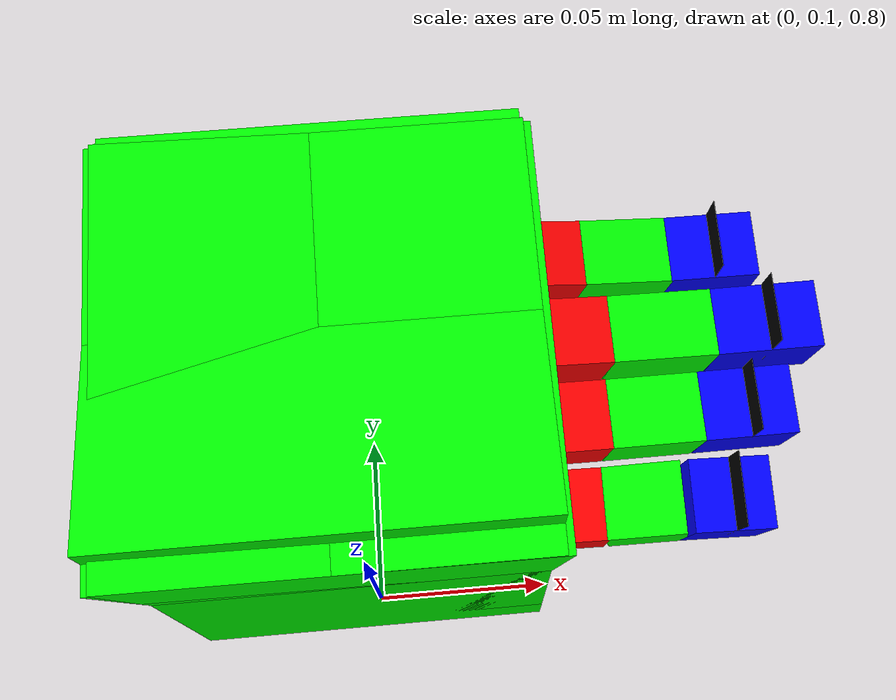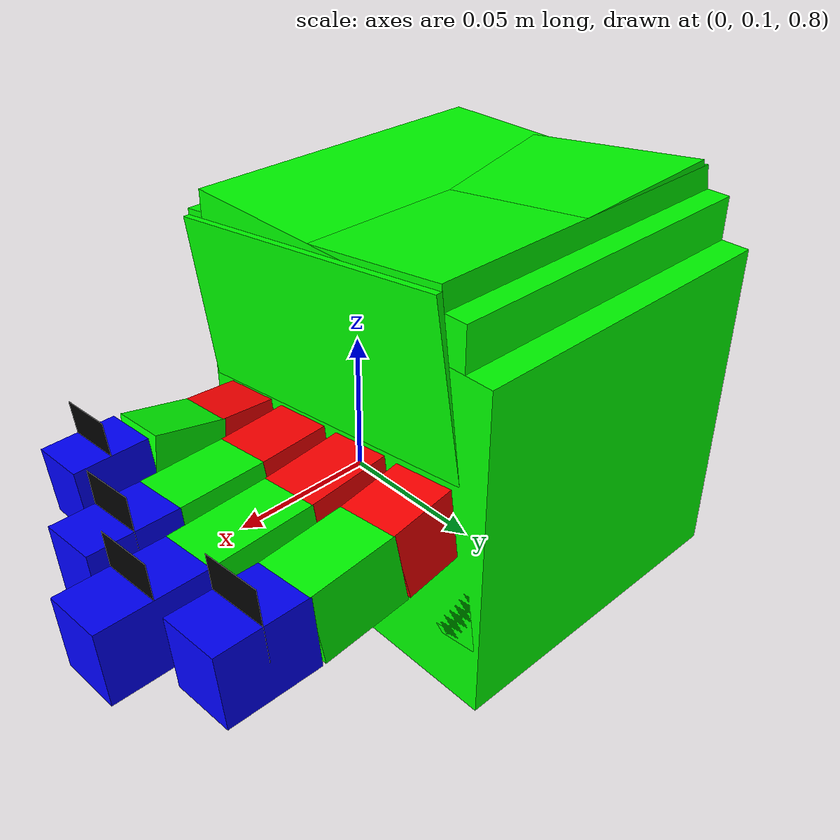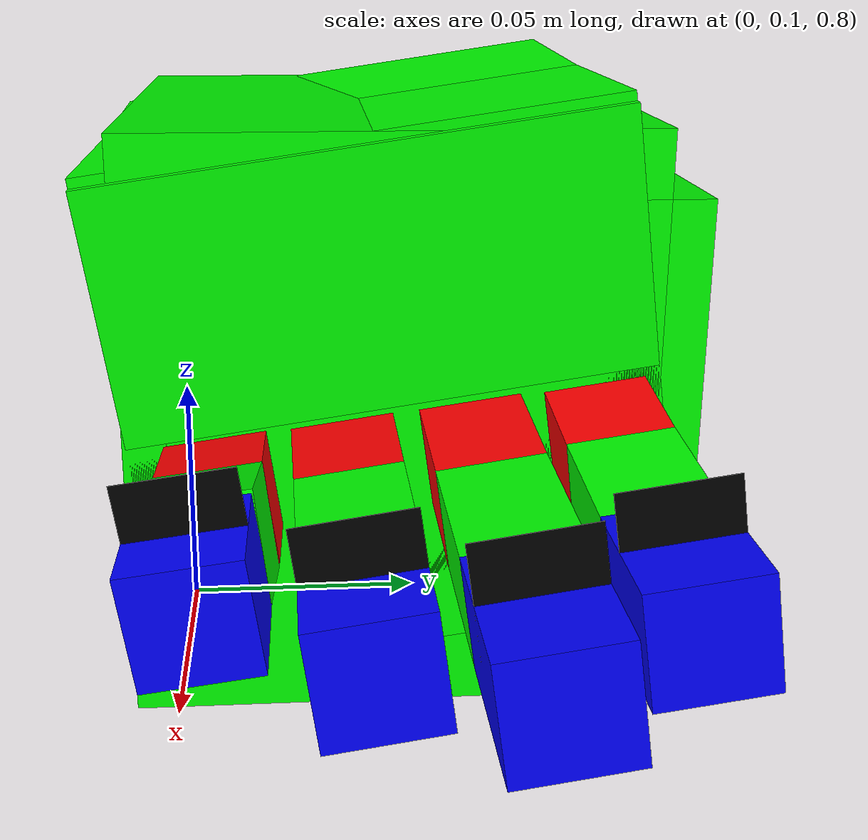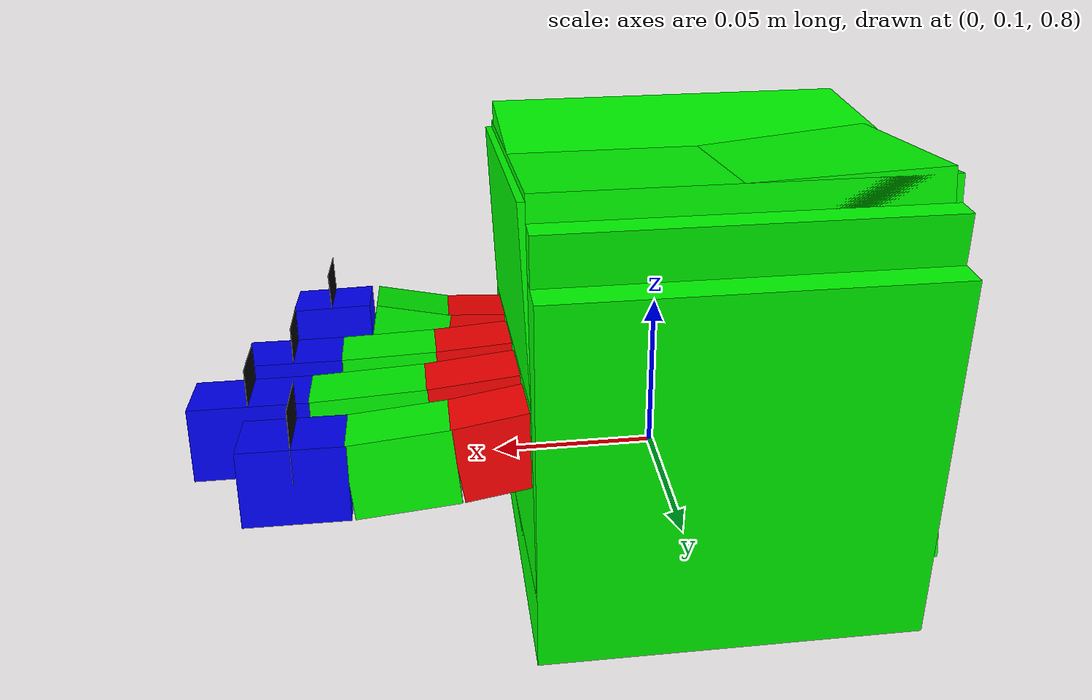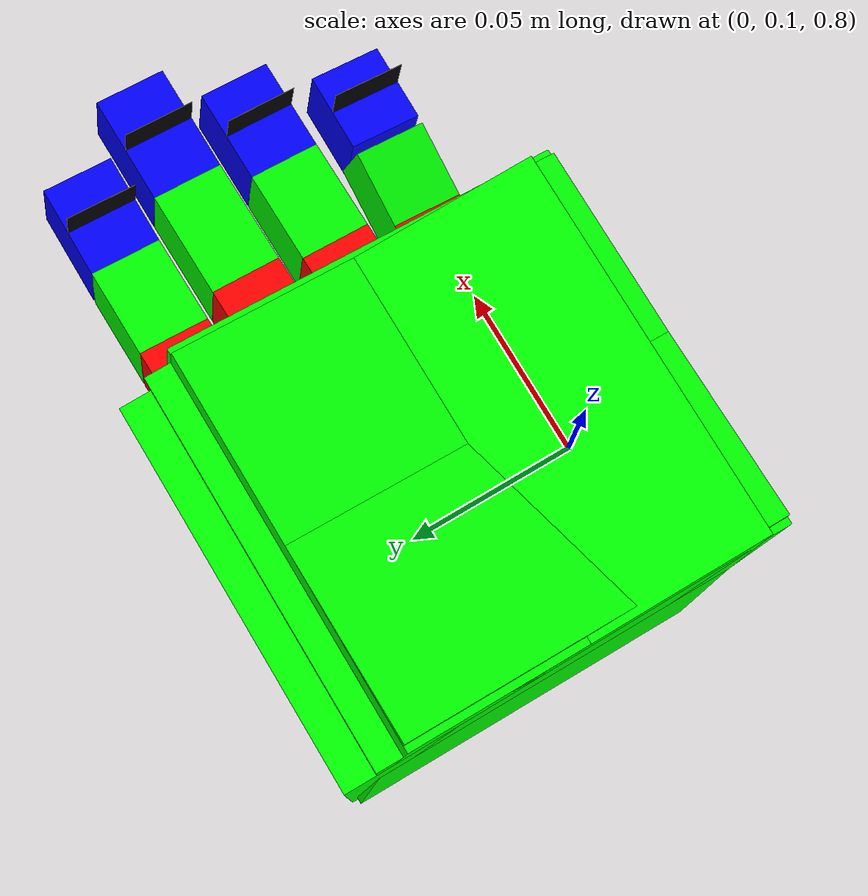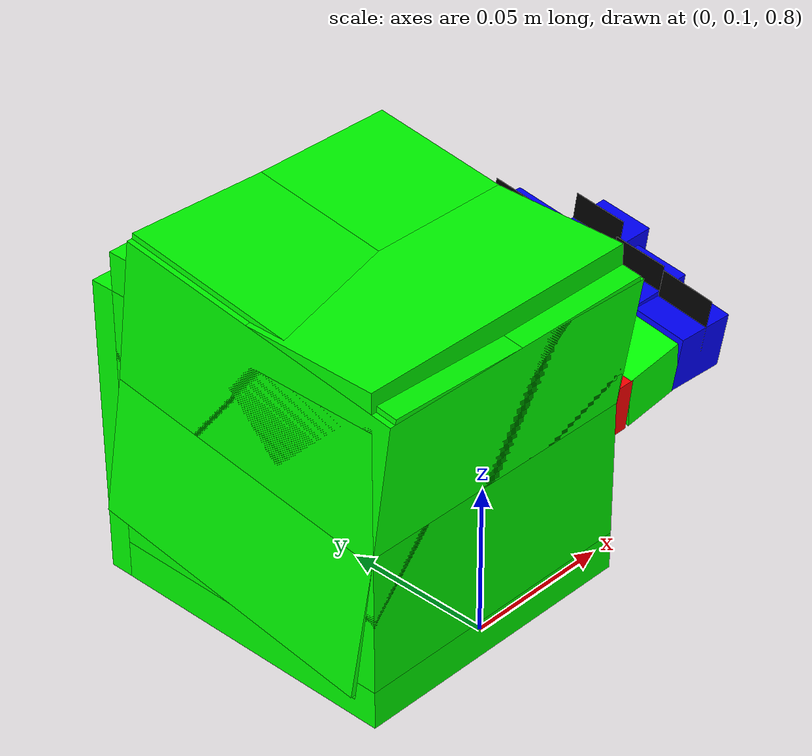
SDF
<sdf version="1.9">
 <world name="Rings">
  <model name="ground_plane">
   <static>true</static>
   <link name="link">
    <collision name="collision">
     <geometry><plane><normal>0 0 1</normal><size>100 100</size></plane></geometry>
    </collision>
    <visual name="visual">
     <geometry><plane><normal>0 0 1</normal><size>100 100</size></plane></geometry>
     <material>
      <ambient>0.8 0.8 0.8 1</ambient>
      <diffuse>0.8 0.8 0.8 1</diffuse>
      <specular>0.8 0.8 0.8 1</specular>
     </material>
    </visual>
    <inertial>
     <mass>1</mass>
     <inertia><ixx>1</ixx><ixy>0</ixy><ixz>0</ixz><iyy>1</iyy><iyz>0</iyz><izz>1</izz></inertia>
    </inertial>
   </link>
  </model>
  <model name="left_hand">
   <joint name="palm_x" type="prismatic">
    <parent>world</parent>
    <child>world_2</child>
    <axis>
     <xyz>1 0 0</xyz>
     <limit>
      <lower>-10</lower>
      <upper>10</upper>
      <effort>30</effort>
      <velocity>1</velocity>
      <stiffness>100000000</stiffness>
      <dissipation>1</dissipation>
     </limit>
     <dynamics>
      <spring_reference>0</spring_reference>
      <spring_stiffness>0</spring_stiffness>
      <damping>0</damping>
      <friction>0</friction>
     </dynamics>
    </axis>
   </joint>
   <link name="world_2">
    <inertial>
     <mass>1.0000000000000001e-05</mass>
     <inertia>
      <ixx>3.3333300000000001e-07</ixx>
      <ixy>0</ixy>
      <ixz>0</ixz>
      <iyy>5.2416699999999997e-06</iyy>
      <iyz>0</iyz>
      <izz>5.5083299999999998e-06</izz>
     </inertia>
    </inertial>
    <visual name="world_2_visual">
     <geometry><box><size>0.1 0.1 0.1</size></box></geometry>
     <material><diffuse>0 1 0 0</diffuse><ambient>0 1 0 0</ambient></material>
    </visual>
   </link>
   <joint name="palm_y" type="prismatic">
    <parent>world_2</parent>
    <child>world_3</child>
    <axis>
     <xyz>0 1 0</xyz>
     <limit>
      <lower>-10</lower>
      <upper>10</upper>
      <effort>30</effort>
      <velocity>1</velocity>
      <stiffness>100000000</stiffness>
      <dissipation>1</dissipation>
     </limit>
     <dynamics>
      <spring_reference>0</spring_reference>
      <spring_stiffness>0</spring_stiffness>
      <damping>0</damping>
      <friction>0</friction>
     </dynamics>
    </axis>
   </joint>
   <link name="world_3">
    <pose>0 -0.008199 0 0 -0 0</pose>
    <inertial>
     <mass>1.0000000000000001e-05</mass>
     <inertia>
      <ixx>3.3333300000000001e-07</ixx>
      <ixy>0</ixy>
      <ixz>0</ixz>
      <iyy>5.2416699999999997e-06</iyy>
      <iyz>0</iyz>
      <izz>5.5083299999999998e-06</izz>
     </inertia>
    </inertial>
    <visual name="world_3_visual">
     <geometry><box><size>0.1 0.1 0.1</size></box></geometry>
     <material><diffuse>0 1 0 0</diffuse><ambient>0 1 0 0</ambient></material>
    </visual>
   </link>
   <joint name="palm_z" type="prismatic">
    <parent>world_3</parent>
    <child>world_4</child>
    <axis>
     <xyz>0 0 1</xyz>
     <limit>
      <lower>-10</lower>
      <upper>10</upper>
      <effort>30</effort>
      <velocity>1</velocity>
      <stiffness>100000000</stiffness>
      <dissipation>1</dissipation>
     </limit>
     <dynamics>
      <spring_reference>0</spring_reference>
      <spring_stiffness>0</spring_stiffness>
      <damping>0</damping>
      <friction>0</friction>
     </dynamics>
    </axis>
   </joint>
   <link name="world_4">
    <pose>0 -0.008199 0.012687 0 -0 0</pose>
    <inertial>
     <mass>1.0000000000000001e-05</mass>
     <inertia>
      <ixx>3.3333300000000001e-07</ixx>
      <ixy>0</ixy>
      <ixz>0</ixz>
      <iyy>5.2416699999999997e-06</iyy>
      <iyz>0</iyz>
      <izz>5.5083299999999998e-06</izz>
     </inertia>
    </inertial>
    <visual name="world_4_visual">
     <geometry><box><size>0.1 0.1 0.1</size></box></geometry>
     <material><diffuse>0 1 0 0</diffuse><ambient>0 1 0 0</ambient></material>
    </visual>
   </link>
   <joint name="palm_roll" type="revolute">
    <parent>world_4</parent>
    <child>world_5</child>
    <axis>
     <xyz>1 0 0</xyz>
     <limit>
      <lower>-10000000000000000</lower>
      <upper>10000000000000000</upper>
      <effort>inf</effort>
      <velocity>inf</velocity>
      <stiffness>100000000</stiffness>
      <dissipation>1</dissipation>
     </limit>
     <dynamics>
      <spring_reference>0</spring_reference>
      <spring_stiffness>0</spring_stiffness>
      <damping>0</damping>
      <friction>0</friction>
     </dynamics>
    </axis>
   </joint>
   <link name="world_5">
    <pose>0 -0.008199 0.012687 0.144272 -0 0</pose>
    <inertial>
     <mass>1.0000000000000001e-05</mass>
     <inertia>
      <ixx>3.3333300000000001e-07</ixx>
      <ixy>0</ixy>
      <ixz>0</ixz>
      <iyy>5.2416699999999997e-06</iyy>
      <iyz>0</iyz>
      <izz>5.5083299999999998e-06</izz>
     </inertia>
    </inertial>
    <visual name="world_5_visual">
     <geometry><box><size>0.1 0.1 0.1</size></box></geometry>
     <material><diffuse>0 1 0 0</diffuse><ambient>0 1 0 0</ambient></material>
    </visual>
   </link>
   <joint name="palm_pitch" type="revolute">
    <parent>world_5</parent>
    <child>world_6</child>
    <axis>
     <xyz>0 1 0</xyz>
     <limit>
      <lower>-10000000000000000</lower>
      <upper>10000000000000000</upper>
      <effort>inf</effort>
      <velocity>inf</velocity>
      <stiffness>100000000</stiffness>
      <dissipation>1</dissipation>
     </limit>
     <dynamics>
      <spring_reference>0</spring_reference>
      <spring_stiffness>0</spring_stiffness>
      <damping>0</damping>
      <friction>0</friction>
     </dynamics>
    </axis>
   </joint>
   <link name="world_6">
    <pose>0 -0.008199 0.012687 0.144372 0.037022 0.005381</pose>
    <inertial>
     <mass>1.0000000000000001e-05</mass>
     <inertia>
      <ixx>3.3333300000000001e-07</ixx>
      <ixy>0</ixy>
      <ixz>0</ixz>
      <iyy>5.2416699999999997e-06</iyy>
      <iyz>0</iyz>
      <izz>5.5083299999999998e-06</izz>
     </inertia>
    </inertial>
    <visual name="world_6_visual">
     <geometry><box><size>0.1 0.1 0.1</size></box></geometry>
     <material><diffuse>0 1 0 0</diffuse><ambient>0 1 0 0</ambient></material>
    </visual>
   </link>
   <joint name="palm_yaw" type="revolute">
    <parent>world_6</parent>
    <child>palm</child>
    <axis>
     <xyz>0 0 1</xyz>
     <limit>
      <lower>-10000000000000000</lower>
      <upper>10000000000000000</upper>
      <effort>inf</effort>
      <velocity>inf</velocity>
      <stiffness>100000000</stiffness>
      <dissipation>1</dissipation>
     </limit>
     <dynamics>
      <spring_reference>0</spring_reference>
      <spring_stiffness>0</spring_stiffness>
      <damping>0</damping>
      <friction>0</friction>
     </dynamics>
    </axis>
   </joint>
   <link name="palm">
    <pose>0 -0.008199 0.012687 0.145972 0.030049 0.053096</pose>
    <inertial>
     <mass>1</mass>
     <inertia>
      <ixx>0.033333300000000003</ixx>
      <ixy>0</ixy>
      <ixz>0</ixz>
      <iyy>0.52416700000000005</iyy>
      <iyz>0</iyz>
      <izz>0.55083300000000002</izz>
     </inertia>
    </inertial>
    <collision name="palm_collision">
     <pose>0 0 -0.0127 0 0 0</pose>
     <geometry><box><size>0.0889 0.0889 0.0254</size></box></geometry>
    </collision>
    <visual name="palm_visual">
     <pose>0 0 -0.0127 0 0 0</pose>
     <geometry><box><size>0.0889 0.0889 0.0254</size></box></geometry>
     <material><diffuse>0 1 0 1</diffuse><ambient>0 1 0 1</ambient></material>
    </visual>
   </link>
   <joint name="palm_index_dumb" type="revolute">
    <parent>palm</parent>
    <child>index_dumb</child>
    <axis>
     <xyz>0 0 1</xyz>
     <limit>
      <lower>-10000000000000000</lower>
      <upper>10000000000000000</upper>
      <effort>inf</effort>
      <velocity>inf</velocity>
      <stiffness>100000000</stiffness>
      <dissipation>1</dissipation>
     </limit>
     <dynamics>
      <spring_reference>0</spring_reference>
      <spring_stiffness>0</spring_stiffness>
      <damping>0</damping>
      <friction>0</friction>
     </dynamics>
    </axis>
   </joint>
   <link name="index_dumb">
    <pose>0.042299 0.030668 0.007102 0.144257 0.03747 0.002299</pose>
    <inertial>
     <mass>0.10000000000000001</mass>
     <inertia>
      <ixx>0.0033333299999999998</ixx>
      <ixy>0</ixy>
      <ixz>0</ixz>
      <iyy>0.052416699999999997</iyy>
      <iyz>0</iyz>
      <izz>0.055083300000000002</izz>
     </inertia>
    </inertial>
    <visual name="index_dumb_visual">
     <pose>5e-05 0 0 0 0 0</pose>
     <geometry><box><size>0.0001 0.01905 0.01905</size></box></geometry>
     <material><diffuse>0 0 0 0</diffuse><ambient>0 0 0 0</ambient></material>
    </visual>
   </link>
   <joint name="index_dumb_index_1" type="revolute">
    <parent>index_dumb</parent>
    <child>index_1</child>
    <axis>
     <xyz>0 -1 0</xyz>
     <limit>
      <lower>-10000000000000000</lower>
      <upper>10000000000000000</upper>
      <effort>inf</effort>
      <velocity>inf</velocity>
      <stiffness>100000000</stiffness>
      <dissipation>1</dissipation>
     </limit>
     <dynamics>
      <spring_reference>0</spring_reference>
      <spring_stiffness>0</spring_stiffness>
      <damping>0</damping>
      <friction>0</friction>
     </dynamics>
    </axis>
   </joint>
   <link name="index_1">
    <pose>0.042299 0.030668 0.007102 0.146001 0.15865 0.020084</pose>
    <inertial>
     <mass>0.10000000000000001</mass>
     <inertia>
      <ixx>0.0033333299999999998</ixx>
      <ixy>0</ixy>
      <ixz>0</ixz>
      <iyy>0.052416699999999997</iyy>
      <iyz>0</iyz>
      <izz>0.055083300000000002</izz>
     </inertia>
    </inertial>
    <collision name="index_1_collision_collision">
     <pose>0.0127 0 0 0 0 0</pose>
     <geometry><box><size>0.0254 0.01905 0.01905</size></box></geometry>
    </collision>
    <visual name="index_1_visual">
     <pose>0.0127 0 0 0 0 0</pose>
     <geometry><box><size>0.0254 0.01905 0.01905</size></box></geometry>
     <material><diffuse>1 0 0 1</diffuse><ambient>1 0 0 1</ambient></material>
    </visual>
   </link>
   <joint name="index_1_index_2" type="revolute">
    <parent>index_1</parent>
    <child>index_2</child>
    <axis>
     <xyz>0 -1 0</xyz>
     <limit>
      <lower>-10000000000000000</lower>
      <upper>10000000000000000</upper>
      <effort>inf</effort>
      <velocity>inf</velocity>
      <stiffness>100000000</stiffness>
      <dissipation>1</dissipation>
     </limit>
     <dynamics>
      <spring_reference>0</spring_reference>
      <spring_stiffness>0</spring_stiffness>
      <damping>0</damping>
      <friction>0</friction>
     </dynamics>
    </axis>
   </joint>
   <link name="index_2">
    <pose>0.067375 0.031172 0.003089 0.144752 0.090577 0.010042</pose>
    <inertial>
     <mass>0.10000000000000001</mass>
     <inertia>
      <ixx>0.0033333299999999998</ixx>
      <ixy>0</ixy>
      <ixz>0</ixz>
      <iyy>0.052416699999999997</iyy>
      <iyz>0</iyz>
      <izz>0.055083300000000002</izz>
     </inertia>
    </inertial>
    <collision name="index_2_collision_collision">
     <pose>0.0127 0 0 0 0 0</pose>
     <geometry><box><size>0.0254 0.01905 0.01905</size></box></geometry>
    </collision>
    <visual name="index_2_visual">
     <pose>0.0127 0 0 0 0 0</pose>
     <geometry><box><size>0.0254 0.01905 0.01905</size></box></geometry>
     <material><diffuse>0 1 0 1</diffuse><ambient>0 1 0 1</ambient></material>
    </visual>
   </link>
   <joint name="index_2_index_3" type="revolute">
    <parent>index_2</parent>
    <child>index_3</child>
    <axis>
     <xyz>0 -1 0</xyz>
     <limit>
      <lower>-10000000000000000</lower>
      <upper>10000000000000000</upper>
      <effort>inf</effort>
      <velocity>inf</velocity>
      <stiffness>100000000</stiffness>
      <dissipation>1</dissipation>
     </limit>
     <dynamics>
      <spring_reference>0</spring_reference>
      <spring_stiffness>0</spring_stiffness>
      <damping>0</damping>
      <friction>0</friction>
     </dynamics>
    </axis>
   </joint>
   <link name="index_3">
    <pose>0.09267 0.031426 0.000792 0.144155 -0.000432 -0.003206</pose>
    <inertial>
     <mass>0.10000000000000001</mass>
     <inertia>
      <ixx>0.0033333299999999998</ixx>
      <ixy>0</ixy>
      <ixz>0</ixz>
      <iyy>0.052416699999999997</iyy>
      <iyz>0</iyz>
      <izz>0.055083300000000002</izz>
     </inertia>
    </inertial>
    <collision name="index_3_collision_collision">
     <pose>0.0127 0 0 0 0 0</pose>
     <geometry><box><size>0.0254 0.01905 0.01905</size></box></geometry>
    </collision>
    <visual name="index_3_visual">
     <pose>0.0127 0 0 0 0 0</pose>
     <geometry><box><size>0.0254 0.01905 0.01905</size></box></geometry>
     <material><diffuse>0 0 1 1</diffuse><ambient>0 0 1 1</ambient></material>
    </visual>
   </link>
   <joint name="index_3_index_tip" type="fixed">
    <parent>index_3</parent>
    <child>index_tip</child>
    <axis>
     <xyz>0 0 1</xyz>
     <limit>
      <lower>-10000000000000000</lower>
      <upper>10000000000000000</upper>
      <effort>inf</effort>
      <velocity>inf</velocity>
      <stiffness>100000000</stiffness>
      <dissipation>1</dissipation>
     </limit>
     <dynamics>
      <spring_reference>0</spring_reference>
      <spring_stiffness>0</spring_stiffness>
      <damping>0</damping>
      <friction>0</friction>
     </dynamics>
    </axis>
    <physics>
     <provide_feedback>true</provide_feedback>
     <ode><limit><cfm>0</cfm><erp>0.20000000000000001</erp></limit><provide_feedback>true</provide_feedback></ode>
    </physics>
    <sensor name="force_torque_sensor" type="force_torque">
     <topic>force_torque</topic>
     <update_rate>100</update_rate>
     <enable_metrics>false</enable_metrics>
     <force_torque>
      <frame>sensor</frame>
      <measure_direction>parent_to_child</measure_direction>
      <force>
       <x>
        <noise type="none">
         <mean>0</mean>
         <stddev>0</stddev>
         <bias_mean>0</bias_mean>
         <bias_stddev>0</bias_stddev>
         <dynamic_bias_stddev>0</dynamic_bias_stddev>
         <dynamic_bias_correlation_time>0</dynamic_bias_correlation_time>
         <precision>0</precision>
        </noise>
       </x>
       <y>
        <noise type="none">
         <mean>0</mean>
         <stddev>0</stddev>
         <bias_mean>0</bias_mean>
         <bias_stddev>0</bias_stddev>
         <dynamic_bias_stddev>0</dynamic_bias_stddev>
         <dynamic_bias_correlation_time>0</dynamic_bias_correlation_time>
         <precision>0</precision>
        </noise>
       </y>
       <z>
        <noise type="none">
         <mean>0</mean>
         <stddev>0</stddev>
         <bias_mean>0</bias_mean>
         <bias_stddev>0</bias_stddev>
         <dynamic_bias_stddev>0</dynamic_bias_stddev>
         <dynamic_bias_correlation_time>0</dynamic_bias_correlation_time>
         <precision>0</precision>
        </noise>
       </z>
      </force>
      <torque>
       <x>
        <noise type="none">
         <mean>0</mean>
         <stddev>0</stddev>
         <bias_mean>0</bias_mean>
         <bias_stddev>0</bias_stddev>
         <dynamic_bias_stddev>0</dynamic_bias_stddev>
         <dynamic_bias_correlation_time>0</dynamic_bias_correlation_time>
         <precision>0</precision>
        </noise>
       </x>
       <y>
        <noise type="none">
         <mean>0</mean>
         <stddev>0</stddev>
         <bias_mean>0</bias_mean>
         <bias_stddev>0</bias_stddev>
         <dynamic_bias_stddev>0</dynamic_bias_stddev>
         <dynamic_bias_correlation_time>0</dynamic_bias_correlation_time>
         <precision>0</precision>
        </noise>
       </y>
       <z>
        <noise type="none">
         <mean>0</mean>
         <stddev>0</stddev>
         <bias_mean>0</bias_mean>
         <bias_stddev>0</bias_stddev>
         <dynamic_bias_stddev>0</dynamic_bias_stddev>
         <dynamic_bias_correlation_time>0</dynamic_bias_correlation_time>
         <precision>0</precision>
        </noise>
       </z>
      </torque>
     </force_torque>
    </sensor>
   </joint>
   <link name="index_tip">
    <pose>0.105361 0.030017 0.010224 0.144155 -0.000432 -0.003206</pose>
    <inertial>
     <mass>0.10000000000000001</mass>
     <inertia>
      <ixx>0.0033333299999999998</ixx>
      <ixy>0</ixy>
      <ixz>0</ixz>
      <iyy>0.052416699999999997</iyy>
      <iyz>0</iyz>
      <izz>0.055083300000000002</izz>
     </inertia>
    </inertial>
    <visual name="index_tip_visual">
     <pose>5e-05 0 0 0 0 0</pose>
     <geometry><box><size>0.0001 0.01905 0.01905</size></box></geometry>
     <material><diffuse>0 0 0 0</diffuse><ambient>0 0 0 0</ambient></material>
    </visual>
   </link>
   <joint name="palm_middle_dumb" type="revolute">
    <parent>palm</parent>
    <child>middle_dumb</child>
    <axis>
     <xyz>0 0 1</xyz>
     <limit>
      <lower>-10000000000000000</lower>
      <upper>10000000000000000</upper>
      <effort>inf</effort>
      <velocity>inf</velocity>
      <stiffness>100000000</stiffness>
      <dissipation>1</dissipation>
     </limit>
     <dynamics>
      <spring_reference>0</spring_reference>
      <spring_stiffness>0</spring_stiffness>
      <damping>0</damping>
      <friction>0</friction>
     </dynamics>
    </axis>
   </joint>
   <link name="middle_dumb">
    <pose>0.043433 0.007387 0.003677 0.144565 0.036253 0.010669</pose>
    <inertial>
     <mass>0.10000000000000001</mass>
     <inertia>
      <ixx>0.0033333299999999998</ixx>
      <ixy>0</ixy>
      <ixz>0</ixz>
      <iyy>0.052416699999999997</iyy>
      <iyz>0</iyz>
      <izz>0.055083300000000002</izz>
     </inertia>
    </inertial>
    <visual name="middle_dumb_visual">
     <pose>5e-05 0 0 0 0 0</pose>
     <geometry><box><size>0.0001 0.01905 0.01905</size></box></geometry>
     <material><diffuse>0 0 0 0</diffuse><ambient>0 0 0 0</ambient></material>
    </visual>
   </link>
   <joint name="middle_dumb_middle_1" type="revolute">
    <parent>middle_dumb</parent>
    <child>middle_1</child>
    <axis>
     <xyz>0 -1 0</xyz>
     <limit>
      <lower>-10000000000000000</lower>
      <upper>10000000000000000</upper>
      <effort>inf</effort>
      <velocity>inf</velocity>
      <stiffness>100000000</stiffness>
      <dissipation>1</dissipation>
     </limit>
     <dynamics>
      <spring_reference>0</spring_reference>
      <spring_stiffness>0</spring_stiffness>
      <damping>0</damping>
      <friction>0</friction>
     </dynamics>
    </axis>
   </joint>
   <link name="middle_1">
    <pose>0.043433 0.007387 0.003677 0.145119 0.094297 0.019152</pose>
    <inertial>
     <mass>0.10000000000000001</mass>
     <inertia>
      <ixx>0.0033333299999999998</ixx>
      <ixy>0</ixy>
      <ixz>0</ixz>
      <iyy>0.052416699999999997</iyy>
      <iyz>0</iyz>
      <izz>0.055083300000000002</izz>
     </inertia>
    </inertial>
    <collision name="middle_1_collision_collision">
     <pose>0.01481666666666667 0 0 0 0 0</pose>
     <geometry><box><size>0.029633 0.01905 0.01905</size></box></geometry>
    </collision>
    <visual name="middle_1_visual">
     <pose>0.01481666666666667 0 0 0 0 0</pose>
     <geometry><box><size>0.029633 0.01905 0.01905</size></box></geometry>
     <material><diffuse>1 0 0 1</diffuse><ambient>1 0 0 1</ambient></material>
    </visual>
   </link>
   <joint name="middle_1_middle_2" type="revolute">
    <parent>middle_1</parent>
    <child>middle_2</child>
    <axis>
     <xyz>0 -1 0</xyz>
     <limit>
      <lower>-10000000000000000</lower>
      <upper>10000000000000000</upper>
      <effort>inf</effort>
      <velocity>inf</velocity>
      <stiffness>100000000</stiffness>
      <dissipation>1</dissipation>
     </limit>
     <dynamics>
      <spring_reference>0</spring_reference>
      <spring_stiffness>0</spring_stiffness>
      <damping>0</damping>
      <friction>0</friction>
     </dynamics>
    </axis>
   </joint>
   <link name="middle_2">
    <pose>0.07293 0.007952 0.000887 0.144614 0.044554 0.011879</pose>
    <inertial>
     <mass>0.10000000000000001</mass>
     <inertia>
      <ixx>0.0033333299999999998</ixx>
      <ixy>0</ixy>
      <ixz>0</ixz>
      <iyy>0.052416699999999997</iyy>
      <iyz>0</iyz>
      <izz>0.055083300000000002</izz>
     </inertia>
    </inertial>
    <collision name="middle_2_collision_collision">
     <pose>0.01481666666666667 0 0 0 0 0</pose>
     <geometry><box><size>0.029633 0.01905 0.01905</size></box></geometry>
    </collision>
    <visual name="middle_2_visual">
     <pose>0.01481666666666667 0 0 0 0 0</pose>
     <geometry><box><size>0.029633 0.01905 0.01905</size></box></geometry>
     <material><diffuse>0 1 0 1</diffuse><ambient>0 1 0 1</ambient></material>
    </visual>
   </link>
   <joint name="middle_2_middle_3" type="revolute">
    <parent>middle_2</parent>
    <child>middle_3</child>
    <axis>
     <xyz>0 -1 0</xyz>
     <limit>
      <lower>-10000000000000000</lower>
      <upper>10000000000000000</upper>
      <effort>inf</effort>
      <velocity>inf</velocity>
      <stiffness>100000000</stiffness>
      <dissipation>1</dissipation>
     </limit>
     <dynamics>
      <spring_reference>0</spring_reference>
      <spring_stiffness>0</spring_stiffness>
      <damping>0</damping>
      <friction>0</friction>
     </dynamics>
    </axis>
   </joint>
   <link name="middle_3">
    <pose>0.102531 0.008304 -0.000433 0.14447 -0.000641 0.005299</pose>
    <inertial>
     <mass>0.10000000000000001</mass>
     <inertia>
      <ixx>0.0033333299999999998</ixx>
      <ixy>0</ixy>
      <ixz>0</ixz>
      <iyy>0.052416699999999997</iyy>
      <iyz>0</iyz>
      <izz>0.055083300000000002</izz>
     </inertia>
    </inertial>
    <collision name="middle_3_collision_collision">
     <pose>0.01481666666666667 0 0 0 0 0</pose>
     <geometry><box><size>0.029633 0.01905 0.01905</size></box></geometry>
    </collision>
    <visual name="middle_3_visual">
     <pose>0.01481666666666667 0 0 0 0 0</pose>
     <geometry><box><size>0.029633 0.01905 0.01905</size></box></geometry>
     <material><diffuse>0 0 1 1</diffuse><ambient>0 0 1 1</ambient></material>
    </visual>
   </link>
   <joint name="middle_3_middle_tip" type="fixed">
    <parent>middle_3</parent>
    <child>middle_tip</child>
    <axis>
     <xyz>0 0 1</xyz>
     <limit>
      <lower>-10000000000000000</lower>
      <upper>10000000000000000</upper>
      <effort>inf</effort>
      <velocity>inf</velocity>
      <stiffness>100000000</stiffness>
      <dissipation>1</dissipation>
     </limit>
     <dynamics>
      <spring_reference>0</spring_reference>
      <spring_stiffness>0</spring_stiffness>
      <damping>0</damping>
      <friction>0</friction>
     </dynamics>
    </axis>
    <physics>
     <provide_feedback>true</provide_feedback>
     <ode><limit><cfm>0</cfm><erp>0.20000000000000001</erp></limit><provide_feedback>true</provide_feedback></ode>
    </physics>
    <sensor name="force_torque_sensor" type="force_torque">
     <topic>force_torque</topic>
     <update_rate>100</update_rate>
     <enable_metrics>false</enable_metrics>
     <force_torque>
      <frame>sensor</frame>
      <measure_direction>parent_to_child</measure_direction>
      <force>
       <x>
        <noise type="none">
         <mean>0</mean>
         <stddev>0</stddev>
         <bias_mean>0</bias_mean>
         <bias_stddev>0</bias_stddev>
         <dynamic_bias_stddev>0</dynamic_bias_stddev>
         <dynamic_bias_correlation_time>0</dynamic_bias_correlation_time>
         <precision>0</precision>
        </noise>
       </x>
       <y>
        <noise type="none">
         <mean>0</mean>
         <stddev>0</stddev>
         <bias_mean>0</bias_mean>
         <bias_stddev>0</bias_stddev>
         <dynamic_bias_stddev>0</dynamic_bias_stddev>
         <dynamic_bias_correlation_time>0</dynamic_bias_correlation_time>
         <precision>0</precision>
        </noise>
       </y>
       <z>
        <noise type="none">
         <mean>0</mean>
         <stddev>0</stddev>
         <bias_mean>0</bias_mean>
         <bias_stddev>0</bias_stddev>
         <dynamic_bias_stddev>0</dynamic_bias_stddev>
         <dynamic_bias_correlation_time>0</dynamic_bias_correlation_time>
         <precision>0</precision>
        </noise>
       </z>
      </force>
      <torque>
       <x>
        <noise type="none">
         <mean>0</mean>
         <stddev>0</stddev>
         <bias_mean>0</bias_mean>
         <bias_stddev>0</bias_stddev>
         <dynamic_bias_stddev>0</dynamic_bias_stddev>
         <dynamic_bias_correlation_time>0</dynamic_bias_correlation_time>
         <precision>0</precision>
        </noise>
       </x>
       <y>
        <noise type="none">
         <mean>0</mean>
         <stddev>0</stddev>
         <bias_mean>0</bias_mean>
         <bias_stddev>0</bias_stddev>
         <dynamic_bias_stddev>0</dynamic_bias_stddev>
         <dynamic_bias_correlation_time>0</dynamic_bias_correlation_time>
         <precision>0</precision>
        </noise>
       </y>
       <z>
        <noise type="none">
         <mean>0</mean>
         <stddev>0</stddev>
         <bias_mean>0</bias_mean>
         <bias_stddev>0</bias_stddev>
         <dynamic_bias_stddev>0</dynamic_bias_stddev>
         <dynamic_bias_correlation_time>0</dynamic_bias_correlation_time>
         <precision>0</precision>
        </noise>
       </z>
      </torque>
     </force_torque>
    </sensor>
   </joint>
   <link name="middle_tip">
    <pose>0.117349 0.007011 0.009002 0.14447 -0.000641 0.005299</pose>
    <inertial>
     <mass>0.10000000000000001</mass>
     <inertia>
      <ixx>0.0033333299999999998</ixx>
      <ixy>0</ixy>
      <ixz>0</ixz>
      <iyy>0.052416699999999997</iyy>
      <iyz>0</iyz>
      <izz>0.055083300000000002</izz>
     </inertia>
    </inertial>
    <visual name="middle_tip_visual">
     <pose>5e-05 0 0 0 0 0</pose>
     <geometry><box><size>0.0001 0.01905 0.01905</size></box></geometry>
     <material><diffuse>0 0 0 0</diffuse><ambient>0 0 0 0</ambient></material>
    </visual>
   </link>
   <joint name="palm_pinky_dumb" type="revolute">
    <parent>palm</parent>
    <child>pinky_dumb</child>
    <axis>
     <xyz>0 0 1</xyz>
     <limit>
      <lower>-10000000000000000</lower>
      <upper>10000000000000000</upper>
      <effort>inf</effort>
      <velocity>inf</velocity>
      <stiffness>100000000</stiffness>
      <dissipation>1</dissipation>
     </limit>
     <dynamics>
      <spring_reference>0</spring_reference>
      <spring_stiffness>0</spring_stiffness>
      <damping>0</damping>
      <friction>0</friction>
     </dynamics>
    </axis>
   </joint>
   <link name="pinky_dumb">
    <pose>0.045723 -0.039613 -0.003238 0.143553 0.040097 -0.015845</pose>
    <inertial>
     <mass>0.10000000000000001</mass>
     <inertia>
      <ixx>0.0033333299999999998</ixx>
      <ixy>0</ixy>
      <ixz>0</ixz>
      <iyy>0.052416699999999997</iyy>
      <iyz>0</iyz>
      <izz>0.055083300000000002</izz>
     </inertia>
    </inertial>
    <visual name="pinky_dumb_visual">
     <pose>5e-05 0 0 0 0 0</pose>
     <geometry><box><size>0.0001 0.01905 0.01905</size></box></geometry>
     <material><diffuse>0 0 0 0</diffuse><ambient>0 0 0 0</ambient></material>
    </visual>
   </link>
   <joint name="pinky_dumb_pinky_1" type="revolute">
    <parent>pinky_dumb</parent>
    <child>pinky_1</child>
    <axis>
     <xyz>0 -1 0</xyz>
     <limit>
      <lower>-10000000000000000</lower>
      <upper>10000000000000000</upper>
      <effort>inf</effort>
      <velocity>inf</velocity>
      <stiffness>100000000</stiffness>
      <dissipation>1</dissipation>
     </limit>
     <dynamics>
      <spring_reference>0</spring_reference>
      <spring_stiffness>0</spring_stiffness>
      <damping>0</damping>
      <friction>0</friction>
     </dynamics>
    </axis>
   </joint>
   <link name="pinky_1">
    <pose>0.045723 -0.039613 -0.003238 0.143526 -0.035165 -0.026721</pose>
    <inertial>
     <mass>0.10000000000000001</mass>
     <inertia>
      <ixx>0.0033333299999999998</ixx>
      <ixy>0</ixy>
      <ixz>0</ixz>
      <iyy>0.052416699999999997</iyy>
      <iyz>0</iyz>
      <izz>0.055083300000000002</izz>
     </inertia>
    </inertial>
    <collision name="pinky_1_collision_collision">
     <pose>0.01058333333333333 0 0 0 0 0</pose>
     <geometry><box><size>0.021167 0.01905 0.01905</size></box></geometry>
    </collision>
    <visual name="pinky_1_visual">
     <pose>0.01058333333333333 0 0 0 0 0</pose>
     <geometry><box><size>0.021167 0.01905 0.01905</size></box></geometry>
     <material><diffuse>1 0 0 1</diffuse><ambient>1 0 0 1</ambient></material>
    </visual>
   </link>
   <joint name="pinky_1_pinky_2" type="revolute">
    <parent>pinky_1</parent>
    <child>pinky_2</child>
    <axis>
     <xyz>0 -1 0</xyz>
     <limit>
      <lower>-10000000000000000</lower>
      <upper>10000000000000000</upper>
      <effort>inf</effort>
      <velocity>inf</velocity>
      <stiffness>100000000</stiffness>
      <dissipation>1</dissipation>
     </limit>
     <dynamics>
      <spring_reference>0</spring_reference>
      <spring_stiffness>0</spring_stiffness>
      <damping>0</damping>
      <friction>0</friction>
     </dynamics>
    </axis>
   </joint>
   <link name="pinky_2">
    <pose>0.066869 -0.040178 -0.002494 0.145989 -0.186601 -0.048911</pose>
    <inertial>
     <mass>0.10000000000000001</mass>
     <inertia>
      <ixx>0.0033333299999999998</ixx>
      <ixy>0</ixy>
      <ixz>0</ixz>
      <iyy>0.052416699999999997</iyy>
      <iyz>0</iyz>
      <izz>0.055083300000000002</izz>
     </inertia>
    </inertial>
    <collision name="pinky_2_collision_collision">
     <pose>0.01058333333333333 0 0 0 0 0</pose>
     <geometry><box><size>0.021167 0.01905 0.01905</size></box></geometry>
    </collision>
    <visual name="pinky_2_visual">
     <pose>0.01058333333333333 0 0 0 0 0</pose>
     <geometry><box><size>0.021167 0.01905 0.01905</size></box></geometry>
     <material><diffuse>0 1 0 1</diffuse><ambient>0 1 0 1</ambient></material>
    </visual>
   </link>
   <joint name="pinky_2_pinky_3" type="revolute">
    <parent>pinky_2</parent>
    <child>pinky_3</child>
    <axis>
     <xyz>0 -1 0</xyz>
     <limit>
      <lower>-10000000000000000</lower>
      <upper>10000000000000000</upper>
      <effort>inf</effort>
      <velocity>inf</velocity>
      <stiffness>100000000</stiffness>
      <dissipation>1</dissipation>
     </limit>
     <dynamics>
      <spring_reference>0</spring_reference>
      <spring_stiffness>0</spring_stiffness>
      <damping>0</damping>
      <friction>0</friction>
     </dynamics>
    </axis>
   </joint>
   <link name="pinky_3">
    <pose>0.087643 -0.041195 0.001433 0.143513 0.032371 -0.016963</pose>
    <inertial>
     <mass>0.10000000000000001</mass>
     <inertia>
      <ixx>0.0033333299999999998</ixx>
      <ixy>0</ixy>
      <ixz>0</ixz>
      <iyy>0.052416699999999997</iyy>
      <iyz>0</iyz>
      <izz>0.055083300000000002</izz>
     </inertia>
    </inertial>
    <collision name="pinky_3_collision_collision">
     <pose>0.01058333333333333 0 0 0 0 0</pose>
     <geometry><box><size>0.021167 0.01905 0.01905</size></box></geometry>
    </collision>
    <visual name="pinky_3_visual">
     <pose>0.01058333333333333 0 0 0 0 0</pose>
     <geometry><box><size>0.021167 0.01905 0.01905</size></box></geometry>
     <material><diffuse>0 0 1 1</diffuse><ambient>0 0 1 1</ambient></material>
    </visual>
   </link>
   <joint name="pinky_3_pinky_tip" type="fixed">
    <parent>pinky_3</parent>
    <child>pinky_tip</child>
    <axis>
     <xyz>0 0 1</xyz>
     <limit>
      <lower>-10000000000000000</lower>
      <upper>10000000000000000</upper>
      <effort>inf</effort>
      <velocity>inf</velocity>
      <stiffness>100000000</stiffness>
      <dissipation>1</dissipation>
     </limit>
     <dynamics>
      <spring_reference>0</spring_reference>
      <spring_stiffness>0</spring_stiffness>
      <damping>0</damping>
      <friction>0</friction>
     </dynamics>
    </axis>
    <physics>
     <provide_feedback>true</provide_feedback>
     <ode><limit><cfm>0</cfm><erp>0.20000000000000001</erp></limit><provide_feedback>true</provide_feedback></ode>
    </physics>
    <sensor name="force_torque_sensor" type="force_torque">
     <topic>force_torque</topic>
     <update_rate>100</update_rate>
     <enable_metrics>false</enable_metrics>
     <force_torque>
      <frame>sensor</frame>
      <measure_direction>parent_to_child</measure_direction>
      <force>
       <x>
        <noise type="none">
         <mean>0</mean>
         <stddev>0</stddev>
         <bias_mean>0</bias_mean>
         <bias_stddev>0</bias_stddev>
         <dynamic_bias_stddev>0</dynamic_bias_stddev>
         <dynamic_bias_correlation_time>0</dynamic_bias_correlation_time>
         <precision>0</precision>
        </noise>
       </x>
       <y>
        <noise type="none">
         <mean>0</mean>
         <stddev>0</stddev>
         <bias_mean>0</bias_mean>
         <bias_stddev>0</bias_stddev>
         <dynamic_bias_stddev>0</dynamic_bias_stddev>
         <dynamic_bias_correlation_time>0</dynamic_bias_correlation_time>
         <precision>0</precision>
        </noise>
       </y>
       <z>
        <noise type="none">
         <mean>0</mean>
         <stddev>0</stddev>
         <bias_mean>0</bias_mean>
         <bias_stddev>0</bias_stddev>
         <dynamic_bias_stddev>0</dynamic_bias_stddev>
         <dynamic_bias_correlation_time>0</dynamic_bias_correlation_time>
         <precision>0</precision>
        </noise>
       </z>
      </force>
      <torque>
       <x>
        <noise type="none">
         <mean>0</mean>
         <stddev>0</stddev>
         <bias_mean>0</bias_mean>
         <bias_stddev>0</bias_stddev>
         <dynamic_bias_stddev>0</dynamic_bias_stddev>
         <dynamic_bias_correlation_time>0</dynamic_bias_correlation_time>
         <precision>0</precision>
        </noise>
       </x>
       <y>
        <noise type="none">
         <mean>0</mean>
         <stddev>0</stddev>
         <bias_mean>0</bias_mean>
         <bias_stddev>0</bias_stddev>
         <dynamic_bias_stddev>0</dynamic_bias_stddev>
         <dynamic_bias_correlation_time>0</dynamic_bias_correlation_time>
         <precision>0</precision>
        </noise>
       </y>
       <z>
        <noise type="none">
         <mean>0</mean>
         <stddev>0</stddev>
         <bias_mean>0</bias_mean>
         <bias_stddev>0</bias_stddev>
         <dynamic_bias_stddev>0</dynamic_bias_stddev>
         <dynamic_bias_correlation_time>0</dynamic_bias_correlation_time>
         <precision>0</precision>
        </noise>
       </z>
      </torque>
     </force_torque>
    </sensor>
   </joint>
   <link name="pinky_tip">
    <pose>0.098502 -0.042742 0.010513 0.143513 0.032371 -0.016963</pose>
    <inertial>
     <mass>0.10000000000000001</mass>
     <inertia>
      <ixx>0.0033333299999999998</ixx>
      <ixy>0</ixy>
      <ixz>0</ixz>
      <iyy>0.052416699999999997</iyy>
      <iyz>0</iyz>
      <izz>0.055083300000000002</izz>
     </inertia>
    </inertial>
    <visual name="pinky_tip_visual">
     <pose>5e-05 0 0 0 0 0</pose>
     <geometry><box><size>0.0001 0.01905 0.01905</size></box></geometry>
     <material><diffuse>0 0 0 0</diffuse><ambient>0 0 0 0</ambient></material>
    </visual>
   </link>
   <joint name="palm_ring_dumb" type="revolute">
    <parent>palm</parent>
    <child>ring_dumb</child>
    <axis>
     <xyz>0 0 1</xyz>
     <limit>
      <lower>-10000000000000000</lower>
      <upper>10000000000000000</upper>
      <effort>inf</effort>
      <velocity>inf</velocity>
      <stiffness>100000000</stiffness>
      <dissipation>1</dissipation>
     </limit>
     <dynamics>
      <spring_reference>0</spring_reference>
      <spring_stiffness>0</spring_stiffness>
      <damping>0</damping>
      <friction>0</friction>
     </dynamics>
    </axis>
   </joint>
   <link name="ring_dumb">
    <pose>0.044589 -0.016332 0.000187 0.14464 0.035952 0.012742</pose>
    <inertial>
     <mass>0.10000000000000001</mass>
     <inertia>
      <ixx>0.0033333299999999998</ixx>
      <ixy>0</ixy>
      <ixz>0</ixz>
      <iyy>0.052416699999999997</iyy>
      <iyz>0</iyz>
      <izz>0.055083300000000002</izz>
     </inertia>
    </inertial>
    <visual name="ring_dumb_visual">
     <pose>5e-05 0 0 0 0 0</pose>
     <geometry><box><size>0.0001 0.01905 0.01905</size></box></geometry>
     <material><diffuse>0 0 0 0</diffuse><ambient>0 0 0 0</ambient></material>
    </visual>
   </link>
   <joint name="ring_dumb_ring_1" type="revolute">
    <parent>ring_dumb</parent>
    <child>ring_1</child>
    <axis>
     <xyz>0 -1 0</xyz>
     <limit>
      <lower>-10000000000000000</lower>
      <upper>10000000000000000</upper>
      <effort>inf</effort>
      <velocity>inf</velocity>
      <stiffness>100000000</stiffness>
      <dissipation>1</dissipation>
     </limit>
     <dynamics>
      <spring_reference>0</spring_reference>
      <spring_stiffness>0</spring_stiffness>
      <damping>0</damping>
      <friction>0</friction>
     </dynamics>
    </axis>
   </joint>
   <link name="ring_1">
    <pose>0.044589 -0.016332 0.000187 0.144806 0.059667 0.016202</pose>
    <inertial>
     <mass>0.10000000000000001</mass>
     <inertia>
      <ixx>0.0033333299999999998</ixx>
      <ixy>0</ixy>
      <ixz>0</ixz>
      <iyy>0.052416699999999997</iyy>
      <iyz>0</iyz>
      <izz>0.055083300000000002</izz>
     </inertia>
    </inertial>
    <collision name="ring_1_collision_collision">
     <pose>0.0127 0 0 0 0 0</pose>
     <geometry><box><size>0.0254 0.01905 0.01905</size></box></geometry>
    </collision>
    <visual name="ring_1_visual">
     <pose>0.0127 0 0 0 0 0</pose>
     <geometry><box><size>0.0254 0.01905 0.01905</size></box></geometry>
     <material><diffuse>1 0 0 1</diffuse><ambient>1 0 0 1</ambient></material>
    </visual>
   </link>
   <joint name="ring_1_ring_2" type="revolute">
    <parent>ring_1</parent>
    <child>ring_2</child>
    <axis>
     <xyz>0 -1 0</xyz>
     <limit>
      <lower>-10000000000000000</lower>
      <upper>10000000000000000</upper>
      <effort>inf</effort>
      <velocity>inf</velocity>
      <stiffness>100000000</stiffness>
      <dissipation>1</dissipation>
     </limit>
     <dynamics>
      <spring_reference>0</spring_reference>
      <spring_stiffness>0</spring_stiffness>
      <damping>0</damping>
      <friction>0</friction>
     </dynamics>
    </axis>
   </joint>
   <link name="ring_2">
    <pose>0.06994 -0.015922 -0.001327 0.144595 0.026006 0.011293</pose>
    <inertial>
     <mass>0.10000000000000001</mass>
     <inertia>
      <ixx>0.0033333299999999998</ixx>
      <ixy>0</ixy>
      <ixz>0</ixz>
      <iyy>0.052416699999999997</iyy>
      <iyz>0</iyz>
      <izz>0.055083300000000002</izz>
     </inertia>
    </inertial>
    <collision name="ring_2_collision_collision">
     <pose>0.0127 0 0 0 0 0</pose>
     <geometry><box><size>0.0254 0.01905 0.01905</size></box></geometry>
    </collision>
    <visual name="ring_2_visual">
     <pose>0.0127 0 0 0 0 0</pose>
     <geometry><box><size>0.0254 0.01905 0.01905</size></box></geometry>
     <material><diffuse>0 1 0 1</diffuse><ambient>0 1 0 1</ambient></material>
    </visual>
   </link>
   <joint name="ring_2_ring_3" type="revolute">
    <parent>ring_2</parent>
    <child>ring_3</child>
    <axis>
     <xyz>0 -1 0</xyz>
     <limit>
      <lower>-10000000000000000</lower>
      <upper>10000000000000000</upper>
      <effort>inf</effort>
      <velocity>inf</velocity>
      <stiffness>100000000</stiffness>
      <dissipation>1</dissipation>
     </limit>
     <dynamics>
      <spring_reference>0</spring_reference>
      <spring_stiffness>0</spring_stiffness>
      <damping>0</damping>
      <friction>0</friction>
     </dynamics>
    </axis>
   </joint>
   <link name="ring_3">
    <pose>0.09533 -0.015635 -0.001988 0.144546 -0.00171 0.007258</pose>
    <inertial>
     <mass>0.10000000000000001</mass>
     <inertia>
      <ixx>0.0033333299999999998</ixx>
      <ixy>0</ixy>
      <ixz>0</ixz>
      <iyy>0.052416699999999997</iyy>
      <iyz>0</iyz>
      <izz>0.055083300000000002</izz>
     </inertia>
    </inertial>
    <collision name="ring_3_collision_collision">
     <pose>0.0127 0 0 0 0 0</pose>
     <geometry><box><size>0.0254 0.01905 0.01905</size></box></geometry>
    </collision>
    <visual name="ring_3_visual">
     <pose>0.0127 0 0 0 0 0</pose>
     <geometry><box><size>0.0254 0.01905 0.01905</size></box></geometry>
     <material><diffuse>0 0 1 1</diffuse><ambient>0 0 1 1</ambient></material>
    </visual>
   </link>
   <joint name="ring_3_ring_tip" type="fixed">
    <parent>ring_3</parent>
    <child>ring_tip</child>
    <axis>
     <xyz>0 0 1</xyz>
     <limit>
      <lower>-10000000000000000</lower>
      <upper>10000000000000000</upper>
      <effort>inf</effort>
      <velocity>inf</velocity>
      <stiffness>100000000</stiffness>
      <dissipation>1</dissipation>
     </limit>
     <dynamics>
      <spring_reference>0</spring_reference>
      <spring_stiffness>0</spring_stiffness>
      <damping>0</damping>
      <friction>0</friction>
     </dynamics>
    </axis>
    <physics>
     <provide_feedback>true</provide_feedback>
     <ode><limit><cfm>0</cfm><erp>0.20000000000000001</erp></limit><provide_feedback>true</provide_feedback></ode>
    </physics>
    <sensor name="force_torque_sensor" type="force_torque">
     <topic>force_torque</topic>
     <update_rate>100</update_rate>
     <enable_metrics>false</enable_metrics>
     <force_torque>
      <frame>sensor</frame>
      <measure_direction>parent_to_child</measure_direction>
      <force>
       <x>
        <noise type="none">
         <mean>0</mean>
         <stddev>0</stddev>
         <bias_mean>0</bias_mean>
         <bias_stddev>0</bias_stddev>
         <dynamic_bias_stddev>0</dynamic_bias_stddev>
         <dynamic_bias_correlation_time>0</dynamic_bias_correlation_time>
         <precision>0</precision>
        </noise>
       </x>
       <y>
        <noise type="none">
         <mean>0</mean>
         <stddev>0</stddev>
         <bias_mean>0</bias_mean>
         <bias_stddev>0</bias_stddev>
         <dynamic_bias_stddev>0</dynamic_bias_stddev>
         <dynamic_bias_correlation_time>0</dynamic_bias_correlation_time>
         <precision>0</precision>
        </noise>
       </y>
       <z>
        <noise type="none">
         <mean>0</mean>
         <stddev>0</stddev>
         <bias_mean>0</bias_mean>
         <bias_stddev>0</bias_stddev>
         <dynamic_bias_stddev>0</dynamic_bias_stddev>
         <dynamic_bias_correlation_time>0</dynamic_bias_correlation_time>
         <precision>0</precision>
        </noise>
       </z>
      </force>
      <torque>
       <x>
        <noise type="none">
         <mean>0</mean>
         <stddev>0</stddev>
         <bias_mean>0</bias_mean>
         <bias_stddev>0</bias_stddev>
         <dynamic_bias_stddev>0</dynamic_bias_stddev>
         <dynamic_bias_correlation_time>0</dynamic_bias_correlation_time>
         <precision>0</precision>
        </noise>
       </x>
       <y>
        <noise type="none">
         <mean>0</mean>
         <stddev>0</stddev>
         <bias_mean>0</bias_mean>
         <bias_stddev>0</bias_stddev>
         <dynamic_bias_stddev>0</dynamic_bias_stddev>
         <dynamic_bias_correlation_time>0</dynamic_bias_correlation_time>
         <precision>0</precision>
        </noise>
       </y>
       <z>
        <noise type="none">
         <mean>0</mean>
         <stddev>0</stddev>
         <bias_mean>0</bias_mean>
         <bias_stddev>0</bias_stddev>
         <dynamic_bias_stddev>0</dynamic_bias_stddev>
         <dynamic_bias_correlation_time>0</dynamic_bias_correlation_time>
         <precision>0</precision>
        </noise>
       </z>
      </torque>
     </force_torque>
    </sensor>
   </joint>
   <link name="ring_tip">
    <pose>0.108024 -0.016915 0.00746 0.144546 -0.00171 0.007258</pose>
    <inertial>
     <mass>0.10000000000000001</mass>
     <inertia>
      <ixx>0.0033333299999999998</ixx>
      <ixy>0</ixy>
      <ixz>0</ixz>
      <iyy>0.052416699999999997</iyy>
      <iyz>0</iyz>
      <izz>0.055083300000000002</izz>
     </inertia>
    </inertial>
    <visual name="ring_tip_visual">
     <pose>5e-05 0 0 0 0 0</pose>
     <geometry><box><size>0.0001 0.01905 0.01905</size></box></geometry>
     <material><diffuse>0 0 0 0</diffuse><ambient>0 0 0 0</ambient></material>
    </visual>
   </link>
   <joint name="palm_thumb_dumb" type="revolute">
    <parent>palm</parent>
    <child>thumb_dumb</child>
    <axis>
     <xyz>0 0 1</xyz>
     <limit>
      <lower>-10000000000000000</lower>
      <upper>10000000000000000</upper>
      <effort>inf</effort>
      <velocity>inf</velocity>
      <stiffness>100000000</stiffness>
      <dissipation>1</dissipation>
     </limit>
     <dynamics>
      <spring_reference>0</spring_reference>
      <spring_stiffness>0</spring_stiffness>
      <damping>0</damping>
      <friction>0</friction>
     </dynamics>
    </axis>
   </joint>
   <link name="thumb_dumb">
    <pose>-0.002496 0.037095 0.00973 -0.071533 -0.13083 2.32775</pose>
    <inertial>
     <mass>0.10000000000000001</mass>
     <inertia>
      <ixx>0.0033333299999999998</ixx>
      <ixy>0</ixy>
      <ixz>0</ixz>
      <iyy>0.052416699999999997</iyy>
      <iyz>0</iyz>
      <izz>0.055083300000000002</izz>
     </inertia>
    </inertial>
    <visual name="thumb_dumb_visual">
     <pose>5e-05 0 0 0 0 0</pose>
     <geometry><box><size>0.0001 0.01905 0.01905</size></box></geometry>
     <material><diffuse>0 0 0 0</diffuse><ambient>0 0 0 0</ambient></material>
    </visual>
   </link>
   <joint name="thumb_dumb_thumb_1" type="revolute">
    <parent>thumb_dumb</parent>
    <child>thumb_1</child>
    <axis>
     <xyz>0 -1 0</xyz>
     <limit>
      <lower>-10000000000000000</lower>
      <upper>10000000000000000</upper>
      <effort>inf</effort>
      <velocity>inf</velocity>
      <stiffness>100000000</stiffness>
      <dissipation>1</dissipation>
     </limit>
     <dynamics>
      <spring_reference>0</spring_reference>
      <spring_stiffness>0</spring_stiffness>
      <damping>0</damping>
      <friction>0</friction>
     </dynamics>
    </axis>
   </joint>
   <link name="thumb_1">
    <pose>-0.002496 0.037095 0.00973 -3.06683 0.321705 -0.799508</pose>
    <inertial>
     <mass>0.10000000000000001</mass>
     <inertia>
      <ixx>0.0033333299999999998</ixx>
      <ixy>0</ixy>
      <ixz>0</ixz>
      <iyy>0.052416699999999997</iyy>
      <iyz>0</iyz>
      <izz>0.055083300000000002</izz>
     </inertia>
    </inertial>
    <collision name="thumb_1_collision_collision">
     <pose>0.015875 0 0 0 0 0</pose>
     <geometry><box><size>0.03175 0.01905 0.01905</size></box></geometry>
    </collision>
    <visual name="thumb_1_visual">
     <pose>0.015875 0 0 0 0 0</pose>
     <geometry><box><size>0.03175 0.01905 0.01905</size></box></geometry>
     <material><diffuse>1 0 0 1</diffuse><ambient>1 0 0 1</ambient></material>
    </visual>
   </link>
   <joint name="thumb_1_thumb_2" type="revolute">
    <parent>thumb_1</parent>
    <child>thumb_2</child>
    <axis>
     <xyz>0 -1 0</xyz>
     <limit>
      <lower>-10000000000000000</lower>
      <upper>10000000000000000</upper>
      <effort>inf</effort>
      <velocity>inf</velocity>
      <stiffness>100000000</stiffness>
      <dissipation>1</dissipation>
     </limit>
     <dynamics>
      <spring_reference>0</spring_reference>
      <spring_stiffness>0</spring_stiffness>
      <damping>0</damping>
      <friction>0</friction>
     </dynamics>
    </axis>
   </joint>
   <link name="thumb_2">
    <pose>0.0185 0.015498 -0.000309 -0.092758 -0.699697 2.37824</pose>
    <inertial>
     <mass>0.10000000000000001</mass>
     <inertia>
      <ixx>0.0033333299999999998</ixx>
      <ixy>0</ixy>
      <ixz>0</ixz>
      <iyy>0.052416699999999997</iyy>
      <iyz>0</iyz>
      <izz>0.055083300000000002</izz>
     </inertia>
    </inertial>
    <collision name="thumb_2_collision_collision">
     <pose>0.015875 0 0 0 0 0</pose>
     <geometry><box><size>0.03175 0.01905 0.01905</size></box></geometry>
    </collision>
    <visual name="thumb_2_visual">
     <pose>0.015875 0 0 0 0 0</pose>
     <geometry><box><size>0.03175 0.01905 0.01905</size></box></geometry>
     <material><diffuse>0 1 0 1</diffuse><ambient>0 1 0 1</ambient></material>
    </visual>
   </link>
   <joint name="thumb_2_thumb_tip" type="fixed">
    <parent>thumb_2</parent>
    <child>thumb_tip</child>
    <axis>
     <xyz>0 0 1</xyz>
     <limit>
      <lower>-10000000000000000</lower>
      <upper>10000000000000000</upper>
      <effort>inf</effort>
      <velocity>inf</velocity>
      <stiffness>100000000</stiffness>
      <dissipation>1</dissipation>
     </limit>
     <dynamics>
      <spring_reference>0</spring_reference>
      <spring_stiffness>0</spring_stiffness>
      <damping>0</damping>
      <friction>0</friction>
     </dynamics>
    </axis>
    <physics>
     <provide_feedback>true</provide_feedback>
     <ode><limit><cfm>0</cfm><erp>0.20000000000000001</erp></limit><provide_feedback>true</provide_feedback></ode>
    </physics>
    <sensor name="force_torque_sensor" type="force_torque">
     <topic>force_torque</topic>
     <update_rate>100</update_rate>
     <enable_metrics>false</enable_metrics>
     <force_torque>
      <frame>sensor</frame>
      <measure_direction>parent_to_child</measure_direction>
      <force>
       <x>
        <noise type="none">
         <mean>0</mean>
         <stddev>0</stddev>
         <bias_mean>0</bias_mean>
         <bias_stddev>0</bias_stddev>
         <dynamic_bias_stddev>0</dynamic_bias_stddev>
         <dynamic_bias_correlation_time>0</dynamic_bias_correlation_time>
         <precision>0</precision>
        </noise>
       </x>
       <y>
        <noise type="none">
         <mean>0</mean>
         <stddev>0</stddev>
         <bias_mean>0</bias_mean>
         <bias_stddev>0</bias_stddev>
         <dynamic_bias_stddev>0</dynamic_bias_stddev>
         <dynamic_bias_correlation_time>0</dynamic_bias_correlation_time>
         <precision>0</precision>
        </noise>
       </y>
       <z>
        <noise type="none">
         <mean>0</mean>
         <stddev>0</stddev>
         <bias_mean>0</bias_mean>
         <bias_stddev>0</bias_stddev>
         <dynamic_bias_stddev>0</dynamic_bias_stddev>
         <dynamic_bias_correlation_time>0</dynamic_bias_correlation_time>
         <precision>0</precision>
        </noise>
       </z>
      </force>
      <torque>
       <x>
        <noise type="none">
         <mean>0</mean>
         <stddev>0</stddev>
         <bias_mean>0</bias_mean>
         <bias_stddev>0</bias_stddev>
         <dynamic_bias_stddev>0</dynamic_bias_stddev>
         <dynamic_bias_correlation_time>0</dynamic_bias_correlation_time>
         <precision>0</precision>
        </noise>
       </x>
       <y>
        <noise type="none">
         <mean>0</mean>
         <stddev>0</stddev>
         <bias_mean>0</bias_mean>
         <bias_stddev>0</bias_stddev>
         <dynamic_bias_stddev>0</dynamic_bias_stddev>
         <dynamic_bias_correlation_time>0</dynamic_bias_correlation_time>
         <precision>0</precision>
        </noise>
       </y>
       <z>
        <noise type="none">
         <mean>0</mean>
         <stddev>0</stddev>
         <bias_mean>0</bias_mean>
         <bias_stddev>0</bias_stddev>
         <dynamic_bias_stddev>0</dynamic_bias_stddev>
         <dynamic_bias_correlation_time>0</dynamic_bias_correlation_time>
         <precision>0</precision>
        </noise>
       </z>
      </torque>
     </force_torque>
    </sensor>
   </joint>
   <link name="thumb_tip">
    <pose>0.013528 0.019034 0.01717 -0.092758 -0.699697 2.37824</pose>
    <inertial>
     <mass>0.10000000000000001</mass>
     <inertia>
      <ixx>0.0033333299999999998</ixx>
      <ixy>0</ixy>
      <ixz>0</ixz>
      <iyy>0.052416699999999997</iyy>
      <iyz>0</iyz>
      <izz>0.055083300000000002</izz>
     </inertia>
    </inertial>
    <visual name="thumb_tip_visual">
     <pose>5e-05 0 0 0 0 0</pose>
     <geometry><box><size>0.0001 0.01905 0.01905</size></box></geometry>
     <material><diffuse>0 0 0 0</diffuse><ambient>0 0 0 0</ambient></material>
    </visual>
   </link>
   <pose>-0.002263 0.15 0.85 0 -0 0</pose>
   <static>false</static>
  </model>
 </world>
</sdf>
